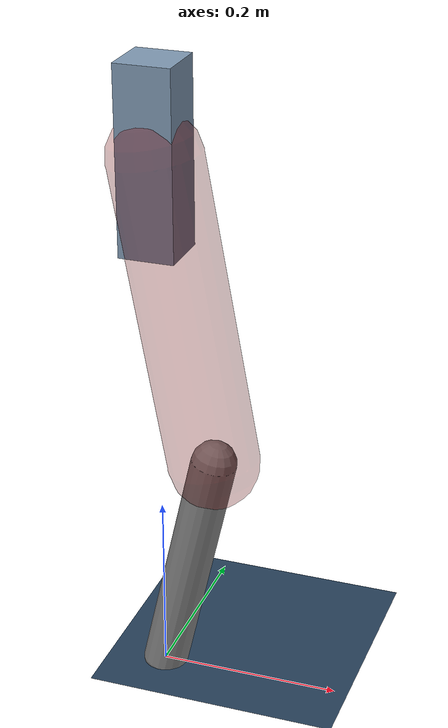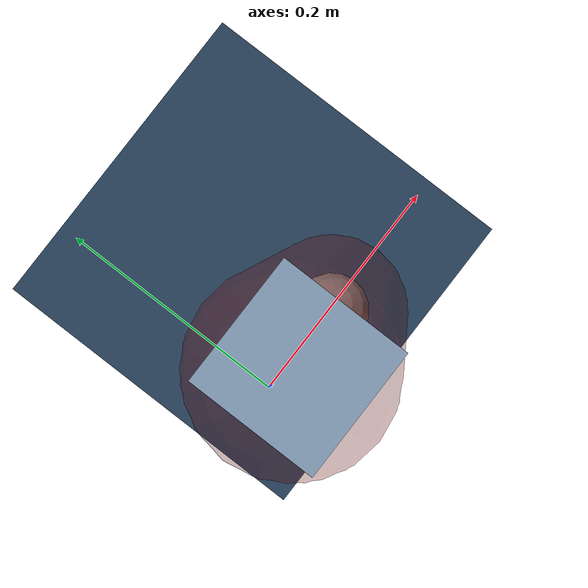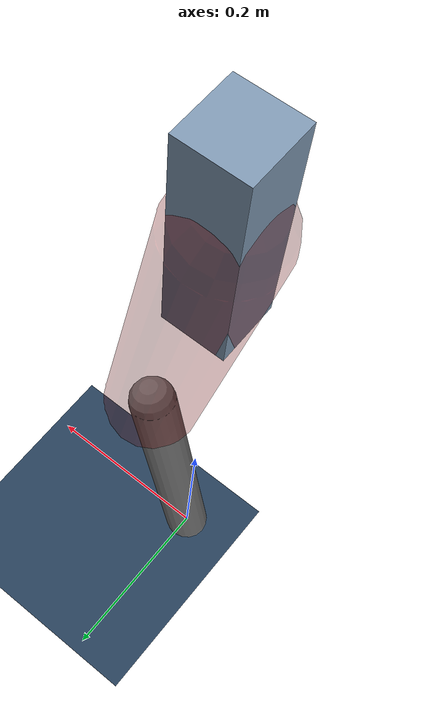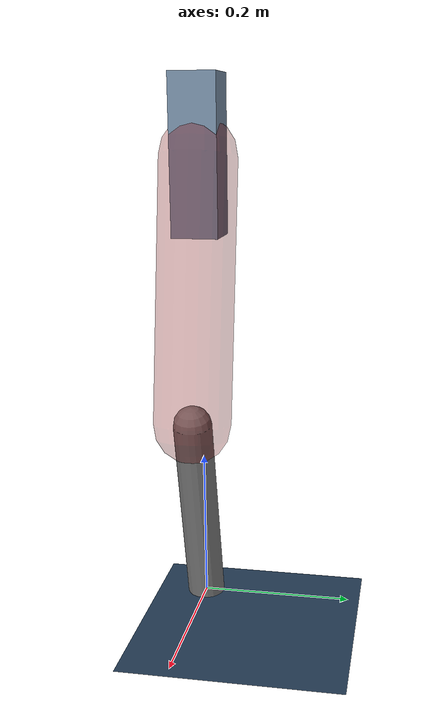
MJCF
<mujoco model="Hopper2D">
	<compiler inertiafromgeom="true" angle="radian" />
	<option timestep="0.001" integrator="implicit" cone="elliptic" solver="Newton" tolerance="1e-10" />

	<default>
		<geom contype="1" conaffinity="1" condim="3" friction="2 0.005 0.0001" solref="0.005 1" />
		<joint limited="true" damping="0.1" />
	</default>

	<asset>
		<texture name="skybox" type="skybox" builtin="gradient" rgb1=".4 .6 .8" rgb2="0 0 0" width="800" height="800" />
		<texture name="grid" type="2d" builtin="checker" rgb1=".1 .2 .3" rgb2=".2 .3 .4" width="300" height="300" mark="edge" markrgb=".2 .3 .4" />
		<material name="ground" texture="grid" texrepeat="1 1" texuniform="true" reflectance="0.1" />
		<material name="leg" rgba="0.5 0.6 0.7 1" />
	</asset>

	<worldbody>

		<geom name="floor" type="plane" size="5 5 0.25" material="ground" />

		<light directional="false" diffuse="0.8 0.8 0.8" specular="0.3 0.3 0.3" pos="0 0 2" dir="0 0 -1" />
		<light mode="targetbodycom" target="base" directional="false" diffuse="0.8 0.8 0.8" specular="0.3 0.3 0.3" pos="0 0 2" dir="0 0 -1" />

		<camera name="fixed" pos="0 -2 1" xyaxes="1 0 0 0 0 1" />
		<camera name="tracking" mode="trackcom" pos="0 -3 1" />

		<body name="root" pos="0 0 0.5985787343098667">
			<joint name="slide_x" type="slide" axis="1 0 0" range="-100 100" />
			<joint name="slide_z" type="slide" axis="0 0 1" range="0 10" />

			<body name="base" pos="0 0 0">
				<geom name="torso" type="box" size="0.03 0.03 0.1" mass="1.926" material="leg" />

				<body name="link1" pos="0 0 0" euler="0 1.3928439860276778 0">
					<joint type="hinge" axis="0 -1 0" pos="0 0 0" name="hinge1" limited="true" range="-3.14 3.14" stiffness="0" damping="0.1" />
					<geom name="thigh" type="capsule" fromto="0 0 0 0.33943552855277503 0 0" size="0.05" rgba="0.5 0 0 0.3" mass="1.0971194799477701" />

					<body name="link2" pos="0.33943552855277503 0 0" euler="0 0.4013233227929517 0">
						<joint type="hinge" axis="0 -1 0" pos="0 0 0" name="hinge2" limited="true" range="-3.14 3.14" stiffness="0" damping="0.1" />
						<geom name="shank" type="capsule" fromto="0 0 0 0.2712421669108506 0 0" size="0.025" mass="0.45999373352868045" />

					</body>
				</body>
			</body>
		</body>
	</worldbody>

	<actuator>
		<motor name="torque1" joint="hinge1" ctrlrange="-22.687491150514717 22.687491150514717" ctrllimited="true" gear="1" />
		<motor name="torque2" joint="hinge2" ctrlrange="-95.91226668781901 95.91226668781901" ctrllimited="true" gear="1" />
	</actuator>
</mujoco>
